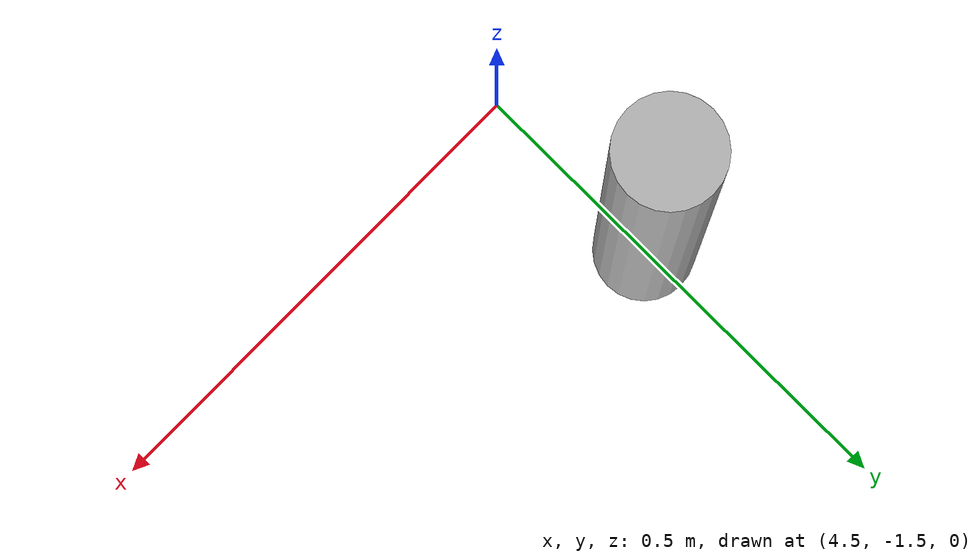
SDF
<sdf version="1.4">
<model name="pole_right">
  <pose>4.5 -1.3 0.51 0 0 0</pose>
  <static>true</static>
    <link name="link">
      <inertial>
        <mass>100.0</mass>
        <inertia>
          <ixx>0.083</ixx>
          <ixy>0.0</ixy>
          <ixz>0.0</ixz>
          <iyy>0.083</iyy>
          <iyz>0.0</iyz>
          <izz>0.083</izz>
        </inertia>
      </inertial>
      <collision name="collision">
        <geometry>
          <cylinder>
            <radius>0.05</radius>
	    <length>1.0</length>
          </cylinder>
        </geometry>
      </collision>
      <visual name="visual">
        <geometry>
          <cylinder>
            <radius>0.05</radius>
	    <length>1.0</length>
          </cylinder>
        </geometry>
      </visual>
    </link>
  </model>
</sdf>
